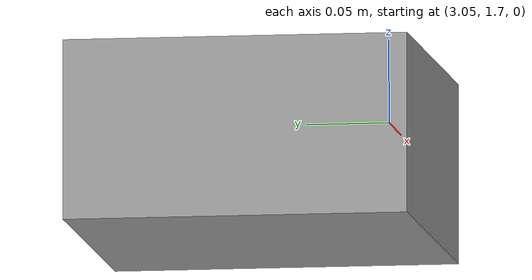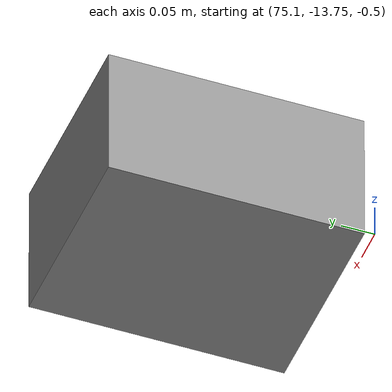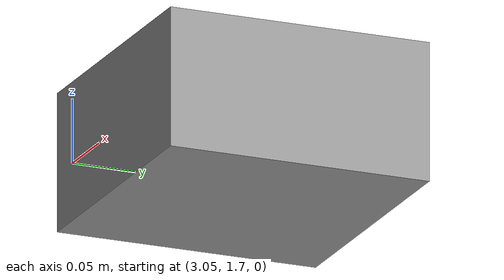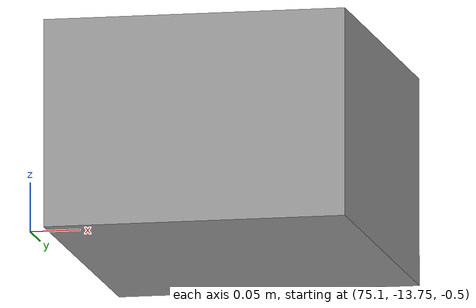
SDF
<?xml version='1.0'?>
<sdf version='1.7'>
  <model name='unit_box'>
    <link name='link'>
      <inertial>
        <mass>0.0245104</mass>
        <inertia>
          <ixx>0.00038398</ixx>
          <ixy>0</ixy>
          <ixz>0</ixz>
          <iyy>0.00028304</iyy>
          <iyz>0</iyz>
          <izz>0.00048541</izz>
        </inertia>
        <pose>0 0 0 0 -0 0</pose>
      </inertial>
      <self_collide>0</self_collide>
      <enable_wind>0</enable_wind>
      <kinematic>0</kinematic>
      <pose>75.2642 -13.5494 -0.387588 0 -0 0</pose>
      <gravity>1</gravity>
      <visual name='visual'>
        <geometry>
          <box>
            <size>0.306782 0.378862 0.210851</size>
          </box>
        </geometry>
        <material>
          <script>
            <name>Gazebo/Grey</name>
            <uri>file://media/materials/scripts/gazebo.material</uri>
          </script>
          <shader type='pixel'>
            <normal_map>__default__</normal_map>
          </shader>
          <ambient>0.3 0.3 0.3 1</ambient>
          <diffuse>0.7 0.7 0.7 1</diffuse>
          <specular>0.01 0.01 0.01 1</specular>
          <emissive>0 0 0 1</emissive>
        </material>
        <pose>0 0 0 0 -0 0</pose>
        <transparency>0</transparency>
        <cast_shadows>1</cast_shadows>
      </visual>
      <collision name='collision'>
        <laser_retro>0</laser_retro>
        <max_contacts>10</max_contacts>
        <pose>0 0 0 0 -0 0</pose>
        <geometry>
          <box>
            <size>0.306782 0.378862 0.210851</size>
          </box>
        </geometry>
        <surface>
          <friction>
            <ode>
              <mu>1</mu>
              <mu2>1</mu2>
              <fdir1>0 0 0</fdir1>
              <slip1>0</slip1>
              <slip2>0</slip2>
            </ode>
            <torsional>
              <coefficient>1</coefficient>
              <patch_radius>0</patch_radius>
              <surface_radius>0</surface_radius>
              <use_patch_radius>1</use_patch_radius>
              <ode>
                <slip>0</slip>
              </ode>
            </torsional>
          </friction>
          <bounce>
            <restitution_coefficient>0</restitution_coefficient>
            <threshold>1e+06</threshold>
          </bounce>
          <contact>
            <collide_without_contact>0</collide_without_contact>
            <collide_without_contact_bitmask>1</collide_without_contact_bitmask>
            <collide_bitmask>1</collide_bitmask>
            <ode>
              <soft_cfm>0</soft_cfm>
              <soft_erp>0.2</soft_erp>
              <kp>1e+13</kp>
              <kd>1</kd>
              <max_vel>0.01</max_vel>
              <min_depth>0</min_depth>
            </ode>
            <bullet>
              <split_impulse>1</split_impulse>
              <split_impulse_penetration_threshold>-0.01</split_impulse_penetration_threshold>
              <soft_cfm>0</soft_cfm>
              <soft_erp>0.2</soft_erp>
              <kp>1e+13</kp>
              <kd>1</kd>
            </bullet>
          </contact>
        </surface>
      </collision>
    </link>
    <link name='link_0'>
      <inertial>
        <mass>0.0048114</mass>
        <inertia>
          <ixx>2.195e-05</ixx>
          <ixy>0</ixy>
          <ixz>0</ixz>
          <iyy>2.31e-05</iyy>
          <iyz>0</iyz>
          <izz>3.564e-05</izz>
        </inertia>
        <pose>0 0 0 0 -0 0</pose>
      </inertial>
      <pose>3.15456 1.79268 0 0 -0 0</pose>
      <gravity>1</gravity>
      <self_collide>0</self_collide>
      <kinematic>0</kinematic>
      <enable_wind>0</enable_wind>
      <visual name='visual'>
        <pose>0 0 0 0 -0 0</pose>
        <geometry>
          <box>
            <size>0.214196 0.207382 0.108348</size>
          </box>
        </geometry>
        <material>
          <lighting>1</lighting>
          <script>
            <uri>file://media/materials/scripts/gazebo.material</uri>
            <name>Gazebo/Grey</name>
          </script>
          <shader type='pixel'>
            <normal_map>__default__</normal_map>
          </shader>
          <ambient>0.3 0.3 0.3 1</ambient>
          <diffuse>0.7 0.7 0.7 1</diffuse>
          <specular>0.01 0.01 0.01 1</specular>
          <emissive>0 0 0 1</emissive>
        </material>
        <transparency>0</transparency>
        <cast_shadows>1</cast_shadows>
      </visual>
      <collision name='collision'>
        <laser_retro>0</laser_retro>
        <max_contacts>10</max_contacts>
        <pose>0 0 0 0 -0 0</pose>
        <geometry>
          <box>
            <size>0.214196 0.207382 0.108348</size>
          </box>
        </geometry>
        <surface>
          <friction>
            <ode>
              <mu>1</mu>
              <mu2>1</mu2>
              <fdir1>0 0 0</fdir1>
              <slip1>0</slip1>
              <slip2>0</slip2>
            </ode>
            <torsional>
              <coefficient>1</coefficient>
              <patch_radius>0</patch_radius>
              <surface_radius>0</surface_radius>
              <use_patch_radius>1</use_patch_radius>
              <ode>
                <slip>0</slip>
              </ode>
            </torsional>
          </friction>
          <bounce>
            <restitution_coefficient>0</restitution_coefficient>
            <threshold>1e+06</threshold>
          </bounce>
          <contact>
            <collide_without_contact>0</collide_without_contact>
            <collide_without_contact_bitmask>1</collide_without_contact_bitmask>
            <collide_bitmask>1</collide_bitmask>
            <ode>
              <soft_cfm>0</soft_cfm>
              <soft_erp>0.2</soft_erp>
              <kp>1e+13</kp>
              <kd>1</kd>
              <max_vel>0.01</max_vel>
              <min_depth>0</min_depth>
            </ode>
            <bullet>
              <split_impulse>1</split_impulse>
              <split_impulse_penetration_threshold>-0.01</split_impulse_penetration_threshold>
              <soft_cfm>0</soft_cfm>
              <soft_erp>0.2</soft_erp>
              <kp>1e+13</kp>
              <kd>1</kd>
            </bullet>
          </contact>
        </surface>
      </collision>
    </link>
    <static>0</static>
    <allow_auto_disable>1</allow_auto_disable>
  </model>
</sdf>
